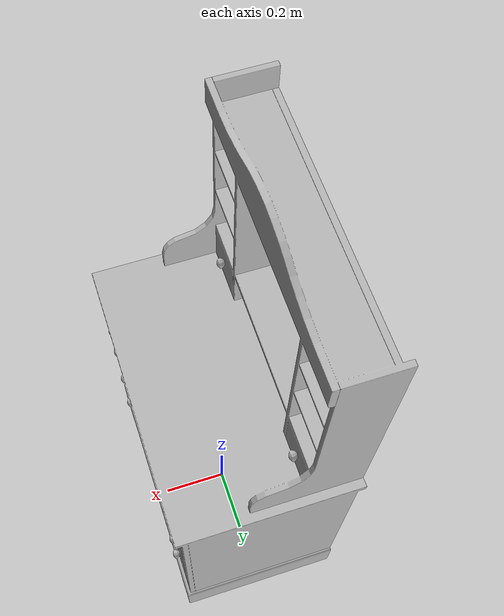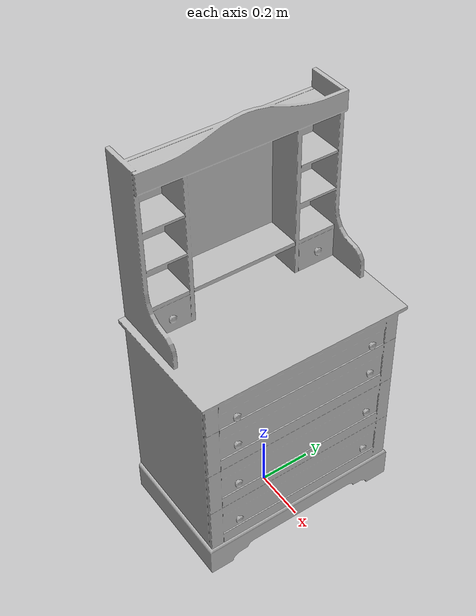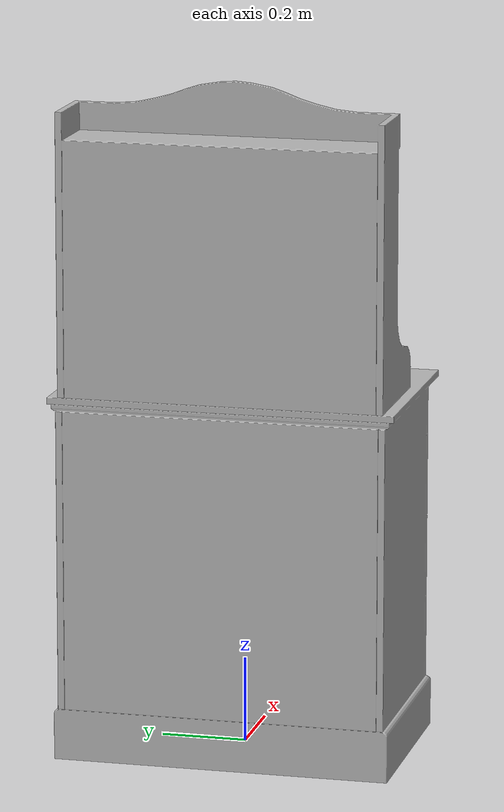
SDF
<?xml version='1.0'?>
<sdf version='1.4'>
  <model name='s__592'>
    <pose>0 0 0 0 0 0</pose>
    <static>true</static>
    <link name='link'>
      <collision name='collision'>
        <pose>0 0 0 0 0 0</pose>
        <geometry>
          <box>
            <size>0.5 0.81 2</size>
          </box>
        </geometry>
      </collision>
      <visual name='visual'>
        <pose>0 0 0 0 0 0</pose>
        <geometry>
          <mesh><uri>model://s__592/s__592.dae</uri></mesh>
        </geometry>
      </visual>
    </link>
  </model>
</sdf>
